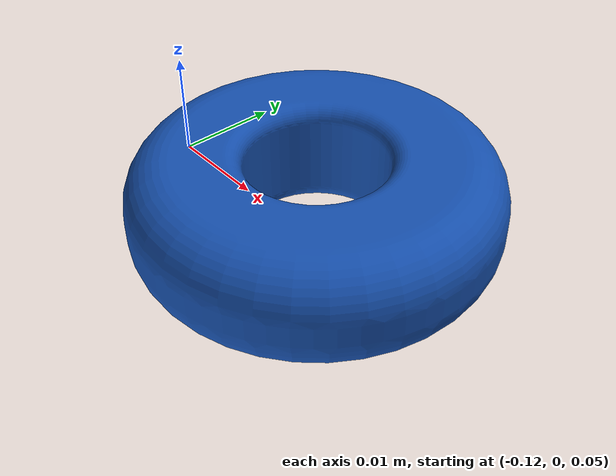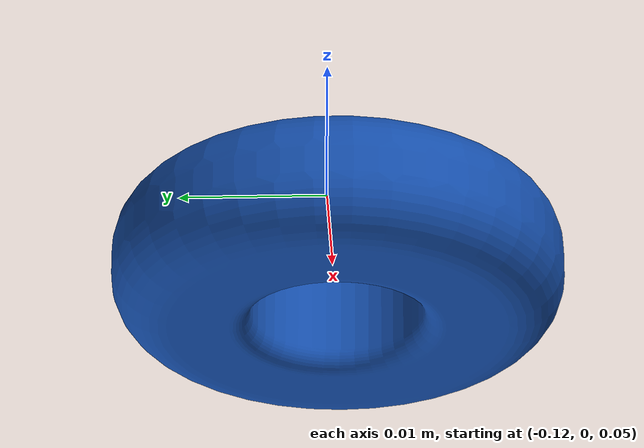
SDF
<?xml version="1.0" ?>
<sdf version="1.6">
    <model name="disk5">
        <link name="disk5">
            <frame name="disk5_frame"><pose>0 0 0 0 -0 0</pose></frame>
            <visual name="disk5_0_disk5_visual">
                <pose>0 0 0 0 -0 0</pose>
                <geometry>
                <mesh><uri>file://home/leo/workspace/ur_gz/src/Universal_Robots_ROS2_Ignition_Simulation/ur_simulation_gz/sdf/models/disk5/disk5.dae</uri></mesh>
                </geometry>
                <material>
                    <ambient>0.08627450980392156743 0.31764705882352939348 0.69019607843137253944 1</ambient>
                    <diffuse>0.08627450980392156743 0.31764705882352939348 0.69019607843137253944 1</diffuse>
                    <specular>0.1 0.1 0.1 1</specular>
                    <emissive>0 0 0 0</emissive>
                </material>
            </visual>
            <collision name="disk5_0_disk5_visual">
                <pose>0 0 0 0 -0 0</pose>
                <geometry>
                <mesh><uri>file://home/leo/workspace/ur_gz/src/Universal_Robots_ROS2_Ignition_Simulation/ur_simulation_gz/sdf/models/disk5/disk5.stl</uri></mesh>
                </geometry>
            </collision>
            <inertial>
                <pose>-3.2478793369870937369e-17 -0.032500000000000021927 0.040500000000000001277 0 0 0</pose>
                <mass>0.014844025288211768962</mass>
                <inertia>
                    <ixx>9.373383468452059865e-07</ixx><ixy>0</ixy><ixz>0</ixz>
                    <iyy>9.373383468452059865e-07</iyy><iyz>0</iyz>
                    <izz>1.7163404239494864273e-06</izz>
                </inertia>
            </inertial>
        </link>
    </model>
</sdf>
